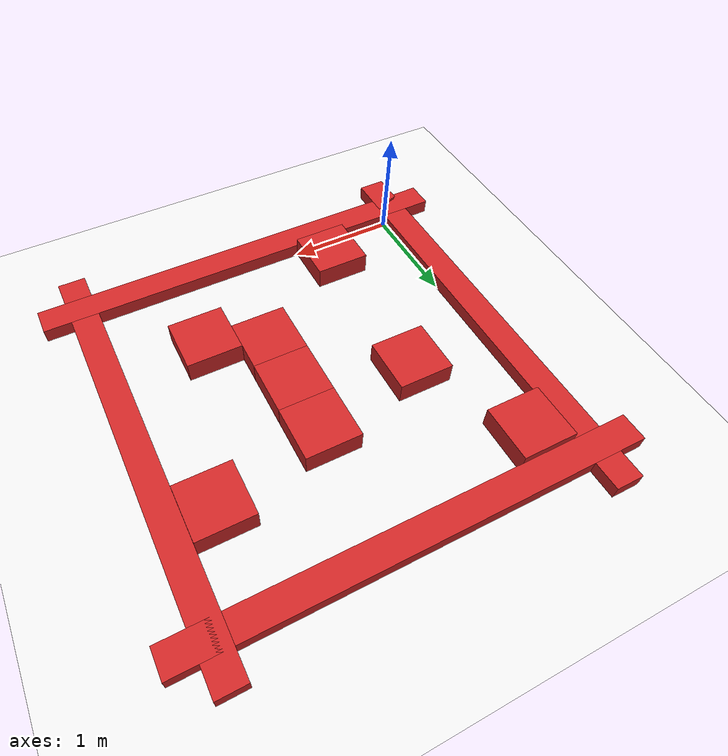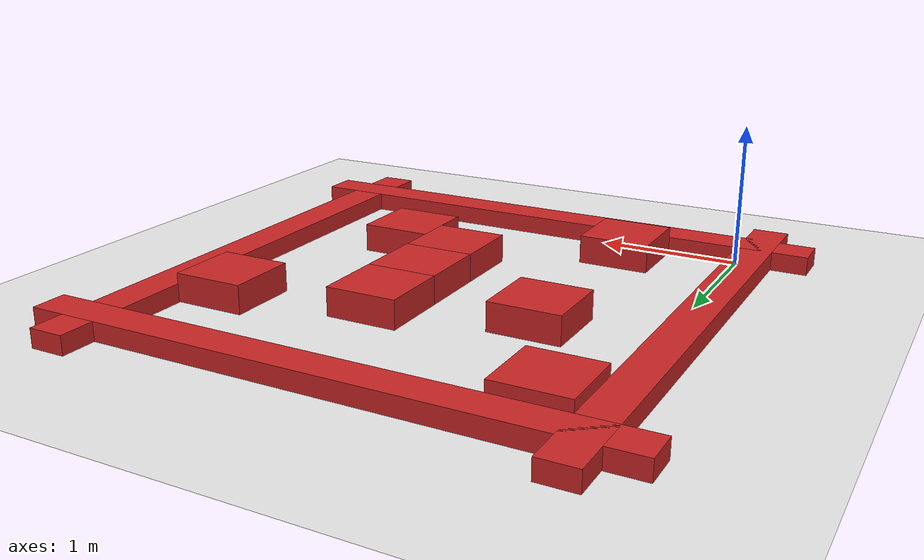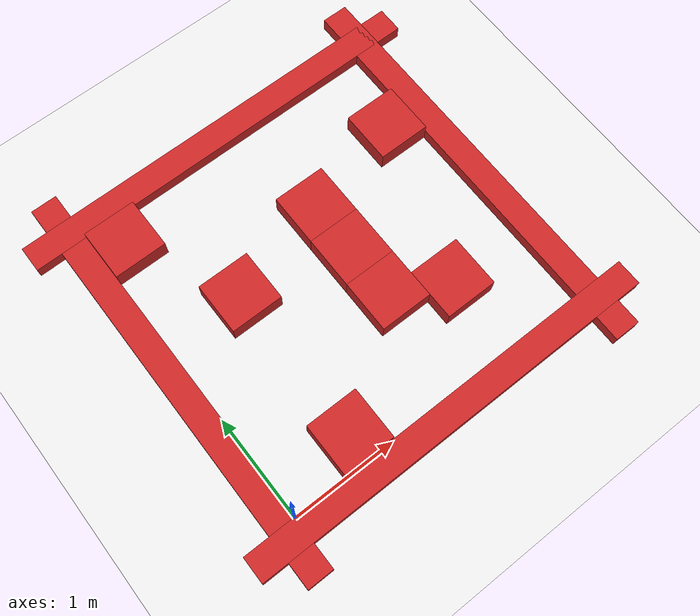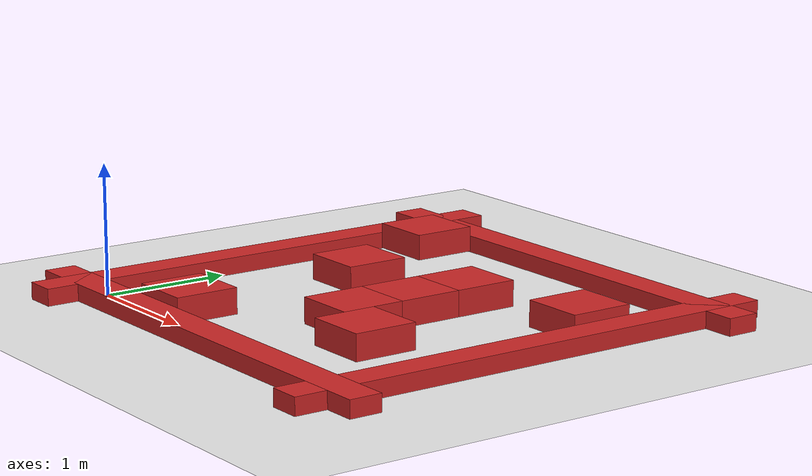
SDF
<sdf version="1.7">
 <world name="default">
  <model name="ground_plane">
   <pose>1.5 1.5 0 0 -0 0</pose>
   <static>1</static>
   <link name="link">
    <collision name="collision">
     <geometry><plane><normal>0 0 1</normal><size>4 4</size></plane></geometry>
     <surface>
      <contact><collide_bitmask>65535</collide_bitmask></contact>
      <friction><ode><mu>100</mu><mu2>50</mu2></ode></friction>
     </surface>
    </collision>
    <visual name="visual">
     <cast_shadows>0</cast_shadows>
     <geometry><plane><normal>0 0 1</normal><size>4 4</size></plane></geometry>
     <material>
      <script><uri>file://media/materials/scripts/gazebo.material</uri><name>Gazebo/White</name></script>
     </material>
    </visual>
   </link>
  </model>
  <model name="unit_box_1_clone">
   <link name="link">
    <inertial>
     <mass>1</mass>
     <inertia>
      <ixx>0.166667</ixx>
      <ixy>0</ixy>
      <ixz>0</ixz>
      <iyy>0.166667</iyy>
      <iyz>0</iyz>
      <izz>0.166667</izz>
     </inertia>
    </inertial>
    <visual name="visual">
     <geometry><box><size>4 0.25 0.25</size></box></geometry>
     <material>
      <script><name>Gazebo/Red</name><uri>file://media/materials/scripts/gazebo.material</uri></script>
      <shader type="pixel"><normal_map>__default__</normal_map></shader>
      <ambient>0.3 0.3 0.3 1</ambient>
      <diffuse>0.7 0.7 0.7 1</diffuse>
      <specular>0.01 0.01 0.01 1</specular>
      <emissive>0 0 0 1</emissive>
     </material>
    </visual>
    <collision name="collision">
     <geometry><box><size>4 0.25 0.25</size></box></geometry>
     <surface>
      <friction>
       <ode><mu>1</mu><mu2>1</mu2><fdir1>0 0 0</fdir1><slip1>0</slip1><slip2>0</slip2></ode>
       <torsional>
        <coefficient>1</coefficient>
        <patch_radius>0</patch_radius>
        <surface_radius>0</surface_radius>
        <use_patch_radius>1</use_patch_radius>
        <ode><slip>0</slip></ode>
       </torsional>
      </friction>
      <bounce><restitution_coefficient>0</restitution_coefficient><threshold>1e+06</threshold></bounce>
      <contact>
       <collide_without_contact>0</collide_without_contact>
       <collide_without_contact_bitmask>1</collide_without_contact_bitmask>
       <collide_bitmask>1</collide_bitmask>
       <ode>
        <soft_cfm>0</soft_cfm>
        <soft_erp>0.2</soft_erp>
        <kp>1e+13</kp>
        <kd>1</kd>
        <max_vel>0.01</max_vel>
        <min_depth>0</min_depth>
       </ode>
       <bullet>
        <split_impulse>1</split_impulse>
        <split_impulse_penetration_threshold>-0.01</split_impulse_penetration_threshold>
        <soft_cfm>0</soft_cfm>
        <soft_erp>0.2</soft_erp>
        <kp>1e+13</kp>
        <kd>1</kd>
       </bullet>
      </contact>
     </surface>
    </collision>
   </link>
   <static>1</static>
   <pose>1.5 3.125 0 0 -0 0</pose>
  </model>
  <model name="unit_box_1">
   <link name="link">
    <inertial>
     <mass>1</mass>
     <inertia>
      <ixx>0.166667</ixx>
      <ixy>0</ixy>
      <ixz>0</ixz>
      <iyy>0.166667</iyy>
      <iyz>0</iyz>
      <izz>0.166667</izz>
     </inertia>
    </inertial>
    <visual name="visual">
     <geometry><box><size>4 0.25 0.25</size></box></geometry>
     <material>
      <script><name>Gazebo/Red</name><uri>file://media/materials/scripts/gazebo.material</uri></script>
      <shader type="pixel"><normal_map>__default__</normal_map></shader>
      <ambient>0.3 0.3 0.3 1</ambient>
      <diffuse>0.7 0.7 0.7 1</diffuse>
      <specular>0.01 0.01 0.01 1</specular>
      <emissive>0 0 0 1</emissive>
     </material>
    </visual>
    <collision name="collision">
     <geometry><box><size>4 0.25 0.25</size></box></geometry>
     <surface>
      <friction>
       <ode><mu>1</mu><mu2>1</mu2><fdir1>0 0 0</fdir1><slip1>0</slip1><slip2>0</slip2></ode>
       <torsional>
        <coefficient>1</coefficient>
        <patch_radius>0</patch_radius>
        <surface_radius>0</surface_radius>
        <use_patch_radius>1</use_patch_radius>
        <ode><slip>0</slip></ode>
       </torsional>
      </friction>
      <bounce><restitution_coefficient>0</restitution_coefficient><threshold>1e+06</threshold></bounce>
      <contact>
       <collide_without_contact>0</collide_without_contact>
       <collide_without_contact_bitmask>1</collide_without_contact_bitmask>
       <collide_bitmask>1</collide_bitmask>
       <ode>
        <soft_cfm>0</soft_cfm>
        <soft_erp>0.2</soft_erp>
        <kp>1e+13</kp>
        <kd>1</kd>
        <max_vel>0.01</max_vel>
        <min_depth>0</min_depth>
       </ode>
       <bullet>
        <split_impulse>1</split_impulse>
        <split_impulse_penetration_threshold>-0.01</split_impulse_penetration_threshold>
        <soft_cfm>0</soft_cfm>
        <soft_erp>0.2</soft_erp>
        <kp>1e+13</kp>
        <kd>1</kd>
       </bullet>
      </contact>
     </surface>
    </collision>
   </link>
   <static>1</static>
   <pose>1.5 -0.125 0 0 -0 0</pose>
  </model>
  <model name="unit_box_1_clone_clone">
   <link name="link">
    <inertial>
     <mass>1</mass>
     <inertia>
      <ixx>0.166667</ixx>
      <ixy>0</ixy>
      <ixz>0</ixz>
      <iyy>0.166667</iyy>
      <iyz>0</iyz>
      <izz>0.166667</izz>
     </inertia>
    </inertial>
    <visual name="visual">
     <geometry><box><size>4 0.25 0.25</size></box></geometry>
     <material>
      <script><name>Gazebo/Red</name><uri>file://media/materials/scripts/gazebo.material</uri></script>
      <shader type="pixel"><normal_map>__default__</normal_map></shader>
      <ambient>0.3 0.3 0.3 1</ambient>
      <diffuse>0.7 0.7 0.7 1</diffuse>
      <specular>0.01 0.01 0.01 1</specular>
      <emissive>0 0 0 1</emissive>
     </material>
    </visual>
    <collision name="collision">
     <geometry><box><size>4 0.25 0.25</size></box></geometry>
     <surface>
      <friction>
       <ode><mu>1</mu><mu2>1</mu2><fdir1>0 0 0</fdir1><slip1>0</slip1><slip2>0</slip2></ode>
       <torsional>
        <coefficient>1</coefficient>
        <patch_radius>0</patch_radius>
        <surface_radius>0</surface_radius>
        <use_patch_radius>1</use_patch_radius>
        <ode><slip>0</slip></ode>
       </torsional>
      </friction>
      <bounce><restitution_coefficient>0</restitution_coefficient><threshold>1e+06</threshold></bounce>
      <contact>
       <collide_without_contact>0</collide_without_contact>
       <collide_without_contact_bitmask>1</collide_without_contact_bitmask>
       <collide_bitmask>1</collide_bitmask>
       <ode>
        <soft_cfm>0</soft_cfm>
        <soft_erp>0.2</soft_erp>
        <kp>1e+13</kp>
        <kd>1</kd>
        <max_vel>0.01</max_vel>
        <min_depth>0</min_depth>
       </ode>
       <bullet>
        <split_impulse>1</split_impulse>
        <split_impulse_penetration_threshold>-0.01</split_impulse_penetration_threshold>
        <soft_cfm>0</soft_cfm>
        <soft_erp>0.2</soft_erp>
        <kp>1e+13</kp>
        <kd>1</kd>
       </bullet>
      </contact>
     </surface>
    </collision>
   </link>
   <static>1</static>
   <pose>-0.125 1.5 0 0 -0 1.57079</pose>
  </model>
  <model name="unit_box_1_clone_clone_0">
   <link name="link">
    <inertial>
     <mass>1</mass>
     <inertia>
      <ixx>0.166667</ixx>
      <ixy>0</ixy>
      <ixz>0</ixz>
      <iyy>0.166667</iyy>
      <iyz>0</iyz>
      <izz>0.166667</izz>
     </inertia>
    </inertial>
    <visual name="visual">
     <geometry><box><size>4 0.25 0.25</size></box></geometry>
     <material>
      <script><name>Gazebo/Red</name><uri>file://media/materials/scripts/gazebo.material</uri></script>
      <shader type="pixel"><normal_map>__default__</normal_map></shader>
      <ambient>0.3 0.3 0.3 1</ambient>
      <diffuse>0.7 0.7 0.7 1</diffuse>
      <specular>0.01 0.01 0.01 1</specular>
      <emissive>0 0 0 1</emissive>
     </material>
    </visual>
    <collision name="collision">
     <geometry><box><size>4 0.25 0.25</size></box></geometry>
     <surface>
      <friction>
       <ode><mu>1</mu><mu2>1</mu2><fdir1>0 0 0</fdir1><slip1>0</slip1><slip2>0</slip2></ode>
       <torsional>
        <coefficient>1</coefficient>
        <patch_radius>0</patch_radius>
        <surface_radius>0</surface_radius>
        <use_patch_radius>1</use_patch_radius>
        <ode><slip>0</slip></ode>
       </torsional>
      </friction>
      <bounce><restitution_coefficient>0</restitution_coefficient><threshold>1e+06</threshold></bounce>
      <contact>
       <collide_without_contact>0</collide_without_contact>
       <collide_without_contact_bitmask>1</collide_without_contact_bitmask>
       <collide_bitmask>1</collide_bitmask>
       <ode>
        <soft_cfm>0</soft_cfm>
        <soft_erp>0.2</soft_erp>
        <kp>1e+13</kp>
        <kd>1</kd>
        <max_vel>0.01</max_vel>
        <min_depth>0</min_depth>
       </ode>
       <bullet>
        <split_impulse>1</split_impulse>
        <split_impulse_penetration_threshold>-0.01</split_impulse_penetration_threshold>
        <soft_cfm>0</soft_cfm>
        <soft_erp>0.2</soft_erp>
        <kp>1e+13</kp>
        <kd>1</kd>
       </bullet>
      </contact>
     </surface>
    </collision>
   </link>
   <static>1</static>
   <pose>3.125 1.5 0 0 -0 1.57079</pose>
  </model>
  <model name="unit_box_obstacle">
   <link name="link">
    <inertial>
     <mass>1</mass>
     <inertia>
      <ixx>0.166667</ixx>
      <ixy>0</ixy>
      <ixz>0</ixz>
      <iyy>0.166667</iyy>
      <iyz>0</iyz>
      <izz>0.166667</izz>
     </inertia>
    </inertial>
    <visual name="visual">
     <geometry><box><size>0.5 0.5 0.2</size></box></geometry>
     <material>
      <script><name>Gazebo/Red</name><uri>file://media/materials/scripts/gazebo.material</uri></script>
      <shader type="pixel"><normal_map>__default__</normal_map></shader>
      <ambient>0.9 0 0 1</ambient>
      <diffuse>0.7 0.7 0.7 1</diffuse>
      <specular>0.01 0.01 0.01 1</specular>
      <emissive>0 0 0 1</emissive>
     </material>
    </visual>
    <collision name="collision">
     <geometry><box><size>0.5 0.5 0.2</size></box></geometry>
     <surface>
      <friction>
       <ode><mu>1</mu><mu2>1</mu2><fdir1>0 0 0</fdir1><slip1>0</slip1><slip2>0</slip2></ode>
       <torsional>
        <coefficient>1</coefficient>
        <patch_radius>0</patch_radius>
        <surface_radius>0</surface_radius>
        <use_patch_radius>1</use_patch_radius>
        <ode><slip>0</slip></ode>
       </torsional>
      </friction>
      <bounce><restitution_coefficient>0</restitution_coefficient><threshold>1e+06</threshold></bounce>
      <contact>
       <collide_without_contact>0</collide_without_contact>
       <collide_without_contact_bitmask>1</collide_without_contact_bitmask>
       <collide_bitmask>1</collide_bitmask>
       <ode>
        <soft_cfm>0</soft_cfm>
        <soft_erp>0.2</soft_erp>
        <kp>1e+13</kp>
        <kd>1</kd>
        <max_vel>0.01</max_vel>
        <min_depth>0</min_depth>
       </ode>
       <bullet>
        <split_impulse>1</split_impulse>
        <split_impulse_penetration_threshold>-0.01</split_impulse_penetration_threshold>
        <soft_cfm>0</soft_cfm>
        <soft_erp>0.2</soft_erp>
        <kp>1e+13</kp>
        <kd>1</kd>
       </bullet>
      </contact>
     </surface>
    </collision>
   </link>
   <static>1</static>
   <pose>0.75 0.25 0.1 0 -0 0</pose>
  </model>
  <model name="unit_box_obstacle_clone">
   <link name="link">
    <inertial>
     <mass>1</mass>
     <inertia>
      <ixx>0.166667</ixx>
      <ixy>0</ixy>
      <ixz>0</ixz>
      <iyy>0.166667</iyy>
      <iyz>0</iyz>
      <izz>0.166667</izz>
     </inertia>
    </inertial>
    <visual name="visual">
     <geometry><box><size>0.5 0.5 0.2</size></box></geometry>
     <material>
      <script><name>Gazebo/Red</name><uri>file://media/materials/scripts/gazebo.material</uri></script>
      <shader type="pixel"><normal_map>__default__</normal_map></shader>
      <ambient>0.9 0 0 1</ambient>
      <diffuse>0.7 0.7 0.7 1</diffuse>
      <specular>0.01 0.01 0.01 1</specular>
      <emissive>0 0 0 1</emissive>
     </material>
    </visual>
    <collision name="collision">
     <geometry><box><size>0.5 0.5 0.2</size></box></geometry>
     <surface>
      <friction>
       <ode><mu>1</mu><mu2>1</mu2><fdir1>0 0 0</fdir1><slip1>0</slip1><slip2>0</slip2></ode>
       <torsional>
        <coefficient>1</coefficient>
        <patch_radius>0</patch_radius>
        <surface_radius>0</surface_radius>
        <use_patch_radius>1</use_patch_radius>
        <ode><slip>0</slip></ode>
       </torsional>
      </friction>
      <bounce><restitution_coefficient>0</restitution_coefficient><threshold>1e+06</threshold></bounce>
      <contact>
       <collide_without_contact>0</collide_without_contact>
       <collide_without_contact_bitmask>1</collide_without_contact_bitmask>
       <collide_bitmask>1</collide_bitmask>
       <ode>
        <soft_cfm>0</soft_cfm>
        <soft_erp>0.2</soft_erp>
        <kp>1e+13</kp>
        <kd>1</kd>
        <max_vel>0.01</max_vel>
        <min_depth>0</min_depth>
       </ode>
       <bullet>
        <split_impulse>1</split_impulse>
        <split_impulse_penetration_threshold>-0.01</split_impulse_penetration_threshold>
        <soft_cfm>0</soft_cfm>
        <soft_erp>0.2</soft_erp>
        <kp>1e+13</kp>
        <kd>1</kd>
       </bullet>
      </contact>
     </surface>
    </collision>
   </link>
   <static>1</static>
   <pose>1.75 1.5 0.1 0 -0 0</pose>
  </model>
  <model name="unit_box_obstacle_clone_0">
   <link name="link">
    <inertial>
     <mass>1</mass>
     <inertia>
      <ixx>0.166667</ixx>
      <ixy>0</ixy>
      <ixz>0</ixz>
      <iyy>0.166667</iyy>
      <iyz>0</iyz>
      <izz>0.166667</izz>
     </inertia>
    </inertial>
    <visual name="visual">
     <geometry><box><size>0.5 0.5 0.2</size></box></geometry>
     <material>
      <script><name>Gazebo/Red</name><uri>file://media/materials/scripts/gazebo.material</uri></script>
      <shader type="pixel"><normal_map>__default__</normal_map></shader>
      <ambient>0.9 0 0 1</ambient>
      <diffuse>0.7 0.7 0.7 1</diffuse>
      <specular>0.01 0.01 0.01 1</specular>
      <emissive>0 0 0 1</emissive>
     </material>
    </visual>
    <collision name="collision">
     <geometry><box><size>0.5 0.5 0.2</size></box></geometry>
     <surface>
      <friction>
       <ode><mu>1</mu><mu2>1</mu2><fdir1>0 0 0</fdir1><slip1>0</slip1><slip2>0</slip2></ode>
       <torsional>
        <coefficient>1</coefficient>
        <patch_radius>0</patch_radius>
        <surface_radius>0</surface_radius>
        <use_patch_radius>1</use_patch_radius>
        <ode><slip>0</slip></ode>
       </torsional>
      </friction>
      <bounce><restitution_coefficient>0</restitution_coefficient><threshold>1e+06</threshold></bounce>
      <contact>
       <collide_without_contact>0</collide_without_contact>
       <collide_without_contact_bitmask>1</collide_without_contact_bitmask>
       <collide_bitmask>1</collide_bitmask>
       <ode>
        <soft_cfm>0</soft_cfm>
        <soft_erp>0.2</soft_erp>
        <kp>1e+13</kp>
        <kd>1</kd>
        <max_vel>0.01</max_vel>
        <min_depth>0</min_depth>
       </ode>
       <bullet>
        <split_impulse>1</split_impulse>
        <split_impulse_penetration_threshold>-0.01</split_impulse_penetration_threshold>
        <soft_cfm>0</soft_cfm>
        <soft_erp>0.2</soft_erp>
        <kp>1e+13</kp>
        <kd>1</kd>
       </bullet>
      </contact>
     </surface>
    </collision>
   </link>
   <static>1</static>
   <pose>1.75 2 0.1 0 -0 0</pose>
  </model>
  <model name="unit_box_obstacle_clone_1">
   <link name="link">
    <inertial>
     <mass>1</mass>
     <inertia>
      <ixx>0.166667</ixx>
      <ixy>0</ixy>
      <ixz>0</ixz>
      <iyy>0.166667</iyy>
      <iyz>0</iyz>
      <izz>0.166667</izz>
     </inertia>
    </inertial>
    <visual name="visual">
     <geometry><box><size>0.5 0.5 0.2</size></box></geometry>
     <material>
      <script><name>Gazebo/Red</name><uri>file://media/materials/scripts/gazebo.material</uri></script>
      <shader type="pixel"><normal_map>__default__</normal_map></shader>
      <ambient>0.9 0 0 1</ambient>
      <diffuse>0.7 0.7 0.7 1</diffuse>
      <specular>0.01 0.01 0.01 1</specular>
      <emissive>0 0 0 1</emissive>
     </material>
    </visual>
    <collision name="collision">
     <geometry><box><size>0.5 0.5 0.2</size></box></geometry>
     <surface>
      <friction>
       <ode><mu>1</mu><mu2>1</mu2><fdir1>0 0 0</fdir1><slip1>0</slip1><slip2>0</slip2></ode>
       <torsional>
        <coefficient>1</coefficient>
        <patch_radius>0</patch_radius>
        <surface_radius>0</surface_radius>
        <use_patch_radius>1</use_patch_radius>
        <ode><slip>0</slip></ode>
       </torsional>
      </friction>
      <bounce><restitution_coefficient>0</restitution_coefficient><threshold>1e+06</threshold></bounce>
      <contact>
       <collide_without_contact>0</collide_without_contact>
       <collide_without_contact_bitmask>1</collide_without_contact_bitmask>
       <collide_bitmask>1</collide_bitmask>
       <ode>
        <soft_cfm>0</soft_cfm>
        <soft_erp>0.2</soft_erp>
        <kp>1e+13</kp>
        <kd>1</kd>
        <max_vel>0.01</max_vel>
        <min_depth>0</min_depth>
       </ode>
       <bullet>
        <split_impulse>1</split_impulse>
        <split_impulse_penetration_threshold>-0.01</split_impulse_penetration_threshold>
        <soft_cfm>0</soft_cfm>
        <soft_erp>0.2</soft_erp>
        <kp>1e+13</kp>
        <kd>1</kd>
       </bullet>
      </contact>
     </surface>
    </collision>
   </link>
   <static>1</static>
   <pose>1.75 1 0.1 0 -0 0</pose>
  </model>
  <model name="unit_box_obstacle_clone_2">
   <link name="link">
    <inertial>
     <mass>1</mass>
     <inertia>
      <ixx>0.166667</ixx>
      <ixy>0</ixy>
      <ixz>0</ixz>
      <iyy>0.166667</iyy>
      <iyz>0</iyz>
      <izz>0.166667</izz>
     </inertia>
    </inertial>
    <visual name="visual">
     <geometry><box><size>0.5 0.5 0.2</size></box></geometry>
     <material>
      <script><name>Gazebo/Red</name><uri>file://media/materials/scripts/gazebo.material</uri></script>
      <shader type="pixel"><normal_map>__default__</normal_map></shader>
      <ambient>0.9 0 0 1</ambient>
      <diffuse>0.7 0.7 0.7 1</diffuse>
      <specular>0.01 0.01 0.01 1</specular>
      <emissive>0 0 0 1</emissive>
     </material>
    </visual>
    <collision name="collision">
     <geometry><box><size>0.5 0.5 0.2</size></box></geometry>
     <surface>
      <friction>
       <ode><mu>1</mu><mu2>1</mu2><fdir1>0 0 0</fdir1><slip1>0</slip1><slip2>0</slip2></ode>
       <torsional>
        <coefficient>1</coefficient>
        <patch_radius>0</patch_radius>
        <surface_radius>0</surface_radius>
        <use_patch_radius>1</use_patch_radius>
        <ode><slip>0</slip></ode>
       </torsional>
      </friction>
      <bounce><restitution_coefficient>0</restitution_coefficient><threshold>1e+06</threshold></bounce>
      <contact>
       <collide_without_contact>0</collide_without_contact>
       <collide_without_contact_bitmask>1</collide_without_contact_bitmask>
       <collide_bitmask>1</collide_bitmask>
       <ode>
        <soft_cfm>0</soft_cfm>
        <soft_erp>0.2</soft_erp>
        <kp>1e+13</kp>
        <kd>1</kd>
        <max_vel>0.01</max_vel>
        <min_depth>0</min_depth>
       </ode>
       <bullet>
        <split_impulse>1</split_impulse>
        <split_impulse_penetration_threshold>-0.01</split_impulse_penetration_threshold>
        <soft_cfm>0</soft_cfm>
        <soft_erp>0.2</soft_erp>
        <kp>1e+13</kp>
        <kd>1</kd>
       </bullet>
      </contact>
     </surface>
    </collision>
   </link>
   <static>1</static>
   <pose>2.25 0.75 0.1 0 -0 0</pose>
  </model>
  <model name="unit_box_obstacle_clone_3">
   <link name="link">
    <inertial>
     <mass>1</mass>
     <inertia>
      <ixx>0.166667</ixx>
      <ixy>0</ixy>
      <ixz>0</ixz>
      <iyy>0.166667</iyy>
      <iyz>0</iyz>
      <izz>0.166667</izz>
     </inertia>
    </inertial>
    <visual name="visual">
     <geometry><box><size>0.5 0.5 0.2</size></box></geometry>
     <material>
      <script><name>Gazebo/Red</name><uri>file://media/materials/scripts/gazebo.material</uri></script>
      <shader type="pixel"><normal_map>__default__</normal_map></shader>
      <ambient>0.9 0 0 1</ambient>
      <diffuse>0.7 0.7 0.7 1</diffuse>
      <specular>0.01 0.01 0.01 1</specular>
      <emissive>0 0 0 1</emissive>
     </material>
    </visual>
    <collision name="collision">
     <geometry><box><size>0.5 0.5 0.2</size></box></geometry>
     <surface>
      <friction>
       <ode><mu>1</mu><mu2>1</mu2><fdir1>0 0 0</fdir1><slip1>0</slip1><slip2>0</slip2></ode>
       <torsional>
        <coefficient>1</coefficient>
        <patch_radius>0</patch_radius>
        <surface_radius>0</surface_radius>
        <use_patch_radius>1</use_patch_radius>
        <ode><slip>0</slip></ode>
       </torsional>
      </friction>
      <bounce><restitution_coefficient>0</restitution_coefficient><threshold>1e+06</threshold></bounce>
      <contact>
       <collide_without_contact>0</collide_without_contact>
       <collide_without_contact_bitmask>1</collide_without_contact_bitmask>
       <collide_bitmask>1</collide_bitmask>
       <ode>
        <soft_cfm>0</soft_cfm>
        <soft_erp>0.2</soft_erp>
        <kp>1e+13</kp>
        <kd>1</kd>
        <max_vel>0.01</max_vel>
        <min_depth>0</min_depth>
       </ode>
       <bullet>
        <split_impulse>1</split_impulse>
        <split_impulse_penetration_threshold>-0.01</split_impulse_penetration_threshold>
        <soft_cfm>0</soft_cfm>
        <soft_erp>0.2</soft_erp>
        <kp>1e+13</kp>
        <kd>1</kd>
       </bullet>
      </contact>
     </surface>
    </collision>
   </link>
   <static>1</static>
   <pose>2.75 2.25 0.1 0 -0 0</pose>
  </model>
  <model name="unit_box_obstacle_clone_4">
   <link name="link">
    <inertial>
     <mass>1</mass>
     <inertia>
      <ixx>0.166667</ixx>
      <ixy>0</ixy>
      <ixz>0</ixz>
      <iyy>0.166667</iyy>
      <iyz>0</iyz>
      <izz>0.166667</izz>
     </inertia>
    </inertial>
    <visual name="visual">
     <geometry><box><size>0.5 0.5 0.2</size></box></geometry>
     <material>
      <script><name>Gazebo/Red</name><uri>file://media/materials/scripts/gazebo.material</uri></script>
      <shader type="pixel"><normal_map>__default__</normal_map></shader>
      <ambient>0.9 0 0 1</ambient>
      <diffuse>0.7 0.7 0.7 1</diffuse>
      <specular>0.01 0.01 0.01 1</specular>
      <emissive>0 0 0 1</emissive>
     </material>
    </visual>
    <collision name="collision">
     <geometry><box><size>0.5 0.5 0.2</size></box></geometry>
     <surface>
      <friction>
       <ode><mu>1</mu><mu2>1</mu2><fdir1>0 0 0</fdir1><slip1>0</slip1><slip2>0</slip2></ode>
       <torsional>
        <coefficient>1</coefficient>
        <patch_radius>0</patch_radius>
        <surface_radius>0</surface_radius>
        <use_patch_radius>1</use_patch_radius>
        <ode><slip>0</slip></ode>
       </torsional>
      </friction>
      <bounce><restitution_coefficient>0</restitution_coefficient><threshold>1e+06</threshold></bounce>
      <contact>
       <collide_without_contact>0</collide_without_contact>
       <collide_without_contact_bitmask>1</collide_without_contact_bitmask>
       <collide_bitmask>1</collide_bitmask>
       <ode>
        <soft_cfm>0</soft_cfm>
        <soft_erp>0.2</soft_erp>
        <kp>1e+13</kp>
        <kd>1</kd>
        <max_vel>0.01</max_vel>
        <min_depth>0</min_depth>
       </ode>
       <bullet>
        <split_impulse>1</split_impulse>
        <split_impulse_penetration_threshold>-0.01</split_impulse_penetration_threshold>
        <soft_cfm>0</soft_cfm>
        <soft_erp>0.2</soft_erp>
        <kp>1e+13</kp>
        <kd>1</kd>
       </bullet>
      </contact>
     </surface>
    </collision>
   </link>
   <static>1</static>
   <pose>0.25 2.75 0.1 0 -0 0</pose>
  </model>
  <model name="unit_box_obstacle_clone_5">
   <link name="link">
    <inertial>
     <mass>1</mass>
     <inertia>
      <ixx>0.166667</ixx>
      <ixy>0</ixy>
      <ixz>0</ixz>
      <iyy>0.166667</iyy>
      <iyz>0</iyz>
      <izz>0.166667</izz>
     </inertia>
    </inertial>
    <visual name="visual">
     <geometry><box><size>0.5 0.5 0.2</size></box></geometry>
     <material>
      <script><name>Gazebo/Red</name><uri>file://media/materials/scripts/gazebo.material</uri></script>
      <shader type="pixel"><normal_map>__default__</normal_map></shader>
      <ambient>0.9 0 0 1</ambient>
      <diffuse>0.7 0.7 0.7 1</diffuse>
      <specular>0.01 0.01 0.01 1</specular>
      <emissive>0 0 0 1</emissive>
     </material>
    </visual>
    <collision name="collision">
     <geometry><box><size>0.5 0.5 0.2</size></box></geometry>
     <surface>
      <friction>
       <ode><mu>1</mu><mu2>1</mu2><fdir1>0 0 0</fdir1><slip1>0</slip1><slip2>0</slip2></ode>
       <torsional>
        <coefficient>1</coefficient>
        <patch_radius>0</patch_radius>
        <surface_radius>0</surface_radius>
        <use_patch_radius>1</use_patch_radius>
        <ode><slip>0</slip></ode>
       </torsional>
      </friction>
      <bounce><restitution_coefficient>0</restitution_coefficient><threshold>1e+06</threshold></bounce>
      <contact>
       <collide_without_contact>0</collide_without_contact>
       <collide_without_contact_bitmask>1</collide_without_contact_bitmask>
       <collide_bitmask>1</collide_bitmask>
       <ode>
        <soft_cfm>0</soft_cfm>
        <soft_erp>0.2</soft_erp>
        <kp>1e+13</kp>
        <kd>1</kd>
        <max_vel>0.01</max_vel>
        <min_depth>0</min_depth>
       </ode>
       <bullet>
        <split_impulse>1</split_impulse>
        <split_impulse_penetration_threshold>-0.01</split_impulse_penetration_threshold>
        <soft_cfm>0</soft_cfm>
        <soft_erp>0.2</soft_erp>
        <kp>1e+13</kp>
        <kd>1</kd>
       </bullet>
      </contact>
     </surface>
    </collision>
   </link>
   <static>1</static>
   <pose>0.75 1.75 0.1 0 -0 0</pose>
  </model>
 </world>
</sdf>
